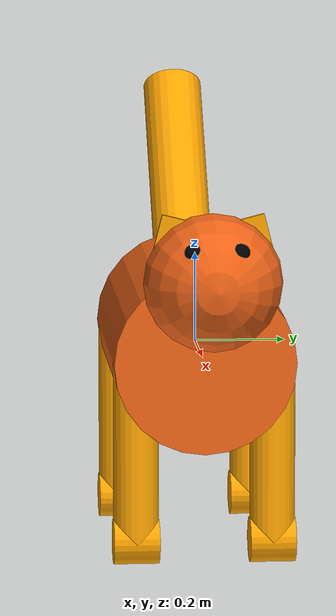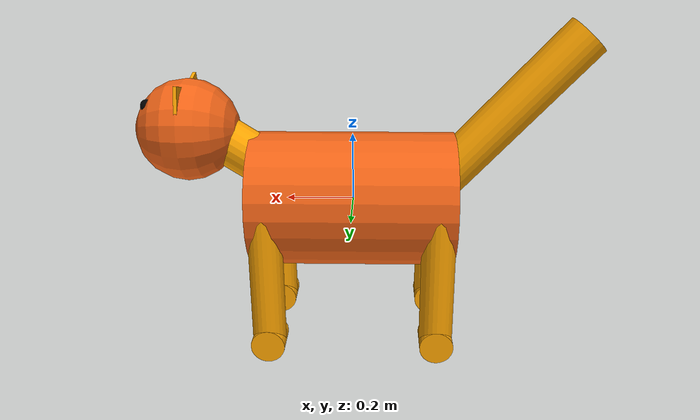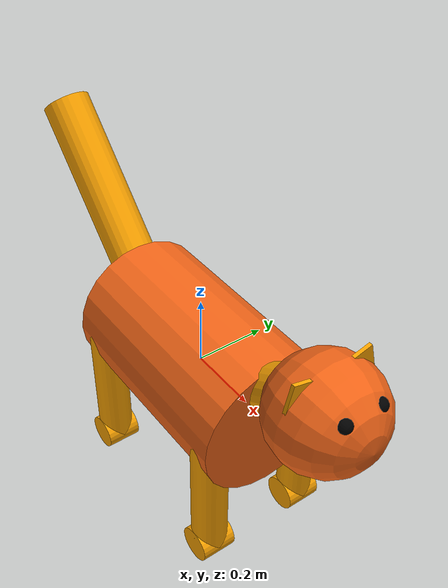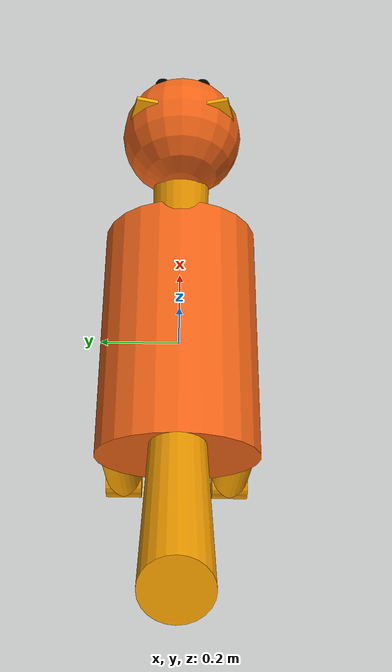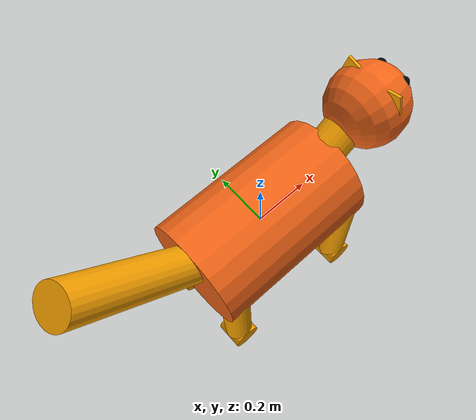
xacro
<?xml version="1.0"?>
<robot xmlns:xacro="http://www.ros.org/wiki/xacro" name="visual_robot">

    <xacro:include filename="$(find gazebo_robot)/robot.gazebo.xacro" />

    <material name="red">
        <color rgba="0.94 0.39 0.09 1"/>
    </material>
    <material name="orange">
        <color rgba="1 0.65 0 1"/>
    </material>
    <material name="black">
        <color rgba="0 0 0 1"/>
    </material>

    <!-- Common macros start -->
    <xacro:macro name="cylinder" params="name leng rad xyz rpy material mass">
        <link name="${name}">
            <visual>
                <geometry>
                    <cylinder length="${leng}" radius="${rad}"/>
                </geometry>
                <origin xyz="${xyz}" rpy="${rpy}"/>
                <material name="${material}"/>
            </visual>
            <collision>
                <geometry>
                    <cylinder length="${leng}" radius="${rad}"/>
                </geometry>
                <origin xyz="${xyz}" rpy="${rpy}"/>
            </collision>
            <inertial>
                <mass value="${mass}"/>
                <inertia ixx="${mass*(3*rad*rad+leng*leng)/12}" ixy="0.0" ixz="0.0"
                    iyy="${mass*(3*rad*rad+leng*leng)/12}" iyz="0.0" izz="${0.5*mass*rad*rad}"/>
            </inertial>
        </link>
    </xacro:macro>

    <xacro:macro name="fixed_joint" params="name parent child xyz rpy">
        <joint name="${name}" type="fixed">
            <parent link="${parent}"/>
            <child link="${child}"/>
            <origin xyz="${xyz}" rpy="${rpy}"/>
        </joint>
    </xacro:macro>

    <xacro:macro name="continuous_joint" params="name parent child axis xyz rpy">
        <joint name="${name}" type="continuous">
            <parent link="${parent}"/>
            <child link="${child}"/>
            <axis xyz="${axis}"/>
            <origin xyz="${xyz}" rpy="${rpy}"/>
        </joint>
    </xacro:macro>

    <xacro:macro name="sphere" params="name rad xyz rpy material mass">
        <link name="${name}">
            <visual>
                <geometry>
                    <sphere radius="${rad}"/>
                </geometry>
                <origin xyz="${xyz}" rpy="${rpy}"/>
                <material name="${material}"/>
            </visual>
            <collision>
                <geometry>
                    <sphere radius="${rad}"/>
                </geometry>
                <origin xyz="${xyz}" rpy="${rpy}"/>
            </collision>
            <inertial>
                <mass value="${mass}"/>
                <inertia ixx="${0.4*mass*rad*rad}" ixy="0.0" ixz="0.0"
                    iyy="${0.4*mass*rad*rad}" iyz="0.0" izz="${0.4*mass*rad*rad}"/>
            </inertial>
        </link>
    </xacro:macro>

    <!-- Common macros end -->

    <xacro:property name="blen" value="0.6" />
    <xacro:property name="bwidth" value="0.2" />
    <xacro:property name="brpy" value="0 1.57075 0" />
    <xacro:property name="bmass" value="3" />

    <xacro:cylinder name="base_link" leng="${blen}" rad="${bwidth}"
        xyz="0 0 0" rpy="${brpy}" material="red" mass="${bmass}" />

    <link name="base_footprint">
    </link>
    <joint name="base_footprint_joint" type="fixed">
        <parent link="base_link"/>
        <child link="base_footprint"/>
        <origin xyz="0 0 -0.45" rpy="0 0 0"/>
    </joint>

    <!-- Start legs -->

    <xacro:property name="llen" value="0.4" />
    <xacro:property name="lwidth" value="0.05" />
    <xacro:property name="lmass" value="0.5" />
    <xacro:property name="lwlen" value="0.1" />
    <xacro:property name="lwrad" value="0.05" />
    <xacro:property name="lwmass" value="0.1" />

    <xacro:macro name="leg" params="prefix xyz">
        <xacro:cylinder name="${prefix}_leg" leng="${llen}" rad="${lwidth}"
            xyz="0 0 0" rpy="0 0 0" material="orange" mass="${lmass}" />
        <xacro:fixed_joint name="base_to_${prefix}_leg" parent="base_link"
            child="${prefix}_leg" xyz="${xyz}" rpy="0 0 0" />
        <xacro:cylinder name="${prefix}_wheel" leng="${lwlen}" rad="${lwrad}"
            xyz="0 0 0" rpy="1.57075 0 0" material="orange" mass="${lwmass}" />
        <xacro:continuous_joint name="${prefix}_leg_to_wheel" parent="${prefix}_leg"
            child="${prefix}_wheel" axis="0 1 0" xyz="0 0 -0.2" rpy="0 0 0" />
    </xacro:macro>

    <xacro:leg prefix="back_right" xyz="-0.25 -0.15 -0.2" />
    <xacro:leg prefix="back_left" xyz="-0.25 0.15 -0.2" />
    <xacro:leg prefix="front_right" xyz="0.25 -0.15 -0.2" />
    <xacro:leg prefix="front_left" xyz="0.25 0.15 -0.2" />

    <!-- End legs -->

    <!-- Tail -->
    <xacro:cylinder name="tail" leng="${blen}" rad="${bwidth/3}"
        xyz="0 0 ${blen/2}" rpy="0 0 0" material="orange" mass="0.1" />
    <xacro:fixed_joint name="base_to_tail" parent="base_link"
        child="tail" xyz="-0.25 0 0.05" rpy="0 -0.75 0" />

    <!-- Neck -->
    <xacro:property name="nlen" value="0.15" />
    <xacro:property name="nwidth" value="0.07" />
    <xacro:property name="nxyz" value="0 0 ${nlen/2}" />
    <xacro:property name="nmass" value="0.05" />
    <xacro:property name="b2lxyz" value="0.25 0 0.1" />
    <xacro:property name="b2lrpy" value="0 1 0" />

    <xacro:cylinder name="neck" leng="${nlen}" rad="${nwidth}"
        xyz="${nxyz}" rpy="0 0 0" material="orange" mass="${nmass}" />
    <xacro:fixed_joint name="base_to_neck" parent="base_link"
        child="neck" xyz="${b2lxyz}" rpy="${b2lrpy}" />

    <!-- Head -->
    <xacro:property name="hrad" value="0.15" />
    <xacro:property name="hxyz" value="0 0 ${hrad}" />
    <xacro:property name="hmass" value="1" />
    <xacro:property name="n2hxyz" value="-0.05 0 0.13" />
    <xacro:property name="n2hrpy" value="0 0.57 0" />

    <xacro:sphere name="head" rad="${hrad}"
        xyz="${hxyz}" rpy="0 0 0" material="red" mass="${hmass}" />
    <xacro:fixed_joint name="neck_to_head" parent="neck"
        child="head" xyz="${n2hxyz}" rpy="${n2hrpy}" />

    <!-- Start ears -->
    <xacro:property name="esize" value="0.08 0.08 0.01" />

    <xacro:macro name="ear" params="prefix rpy h2exyz">
        <link name="${prefix}_ear">
            <visual>
                <geometry>
                    <box size="${esize}"/>
                </geometry>
                <origin xyz="0 0 0" rpy="${rpy}"/>
                <material name="orange"/>
            </visual>
        </link>
        <joint name="head_to_${prefix}_ear" type="fixed">
            <parent link="head"/>
            <child link="${prefix}_ear"/>
            <origin xyz="${h2exyz}" rpy="0 0 0"/>
        </joint>
    </xacro:macro>

    <xacro:ear prefix="right" rpy="0 0 -0.25" h2exyz="-0.1 -0.08 0.15" />
    <xacro:ear prefix="left" rpy="0 0 0.25" h2exyz="-0.1 0.08 0.15" />

    <!-- End ears -->
    <xacro:property name="erad" value="0.02" />

    <xacro:sphere name="left_eye" rad="${erad}" xyz="0 0 0"
        rpy="0 0 0" material="black" mass="0.01" />
    <xacro:fixed_joint name="head_to_left_eye" parent="head"
        child="left_eye" xyz="-0.08 -0.05 0.25" rpy="0 0 0" />

    <xacro:sphere name="right_eye" rad="${erad}" xyz="0 0 0"
        rpy="0 0 0" material="black" mass="0.01" />
    <xacro:fixed_joint name="head_to_right_eye" parent="head"
        child="right_eye" xyz="-0.08 0.05 0.25" rpy="0 0 0" />

</robot>
